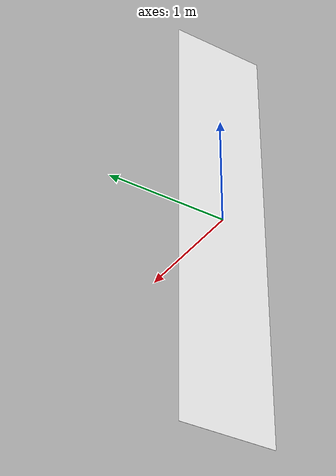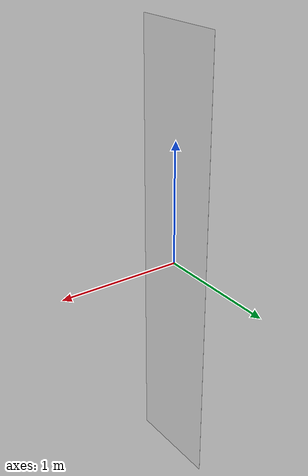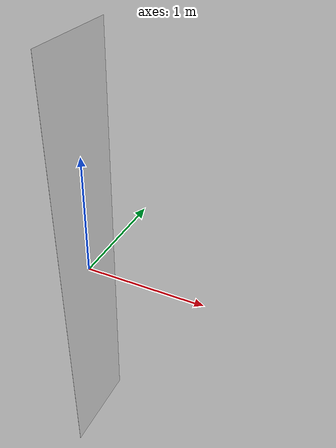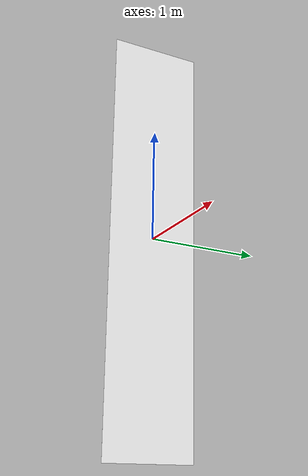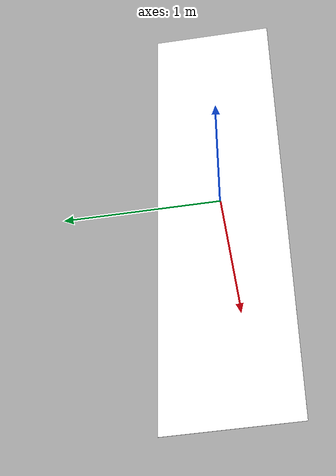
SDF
<?xml version="1.0" ?>
<sdf version="1.6">
  <model name="banner">
    <static>true</static>
    <link name="link">
      <visual name="visual">
        <geometry>
          <plane>
            <normal>-1 0 0</normal>
            <size>3.7 0.8</size>
          </plane>
        </geometry>
        <material>
          <ambient>1 1 1 1</ambient>
          <diffuse>1 1 1 1</diffuse>
          <specular>1 1 1 1</specular>
          <pbr>
            <metal>
              <albedo_map>model://banner/banner.png</albedo_map>
            </metal>
          </pbr>
        </material>
      </visual>
    </link>
  </model>
</sdf>
